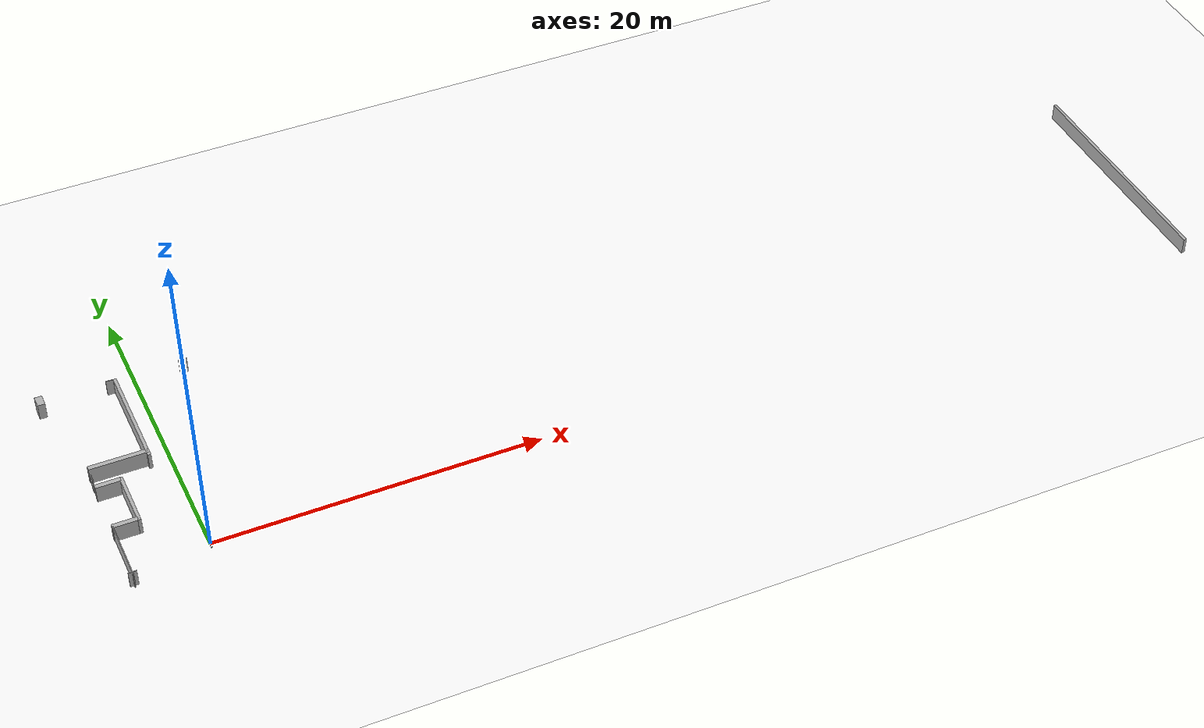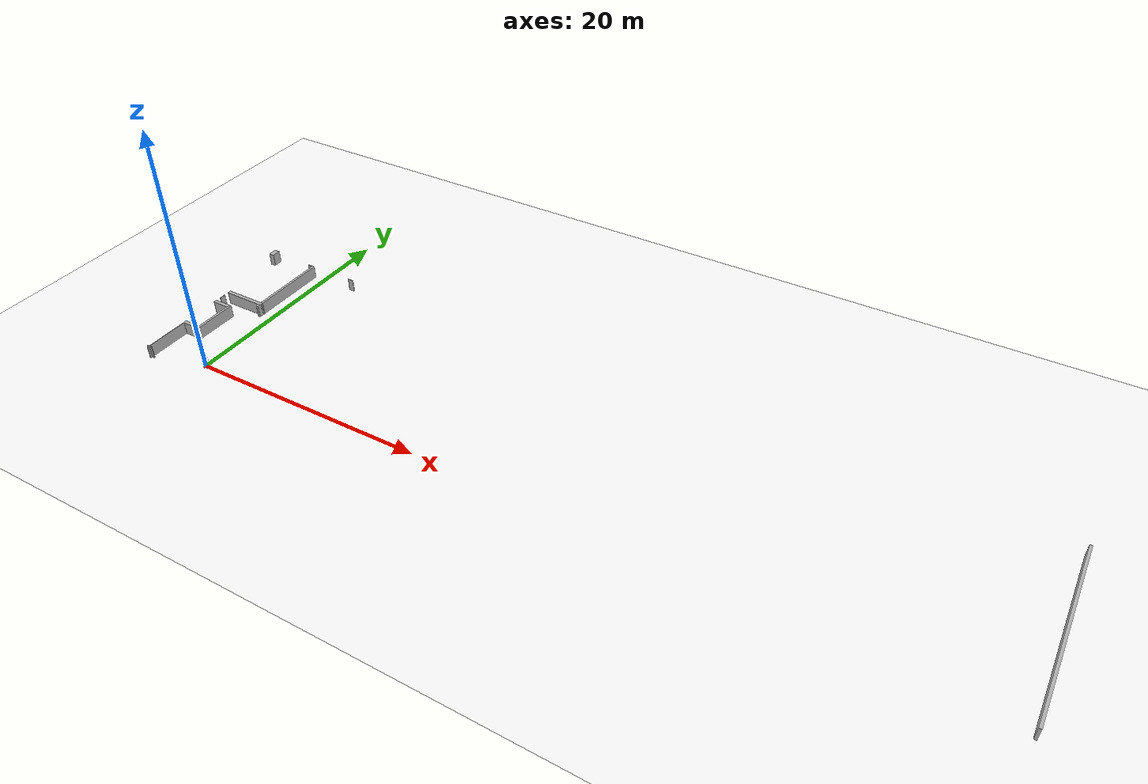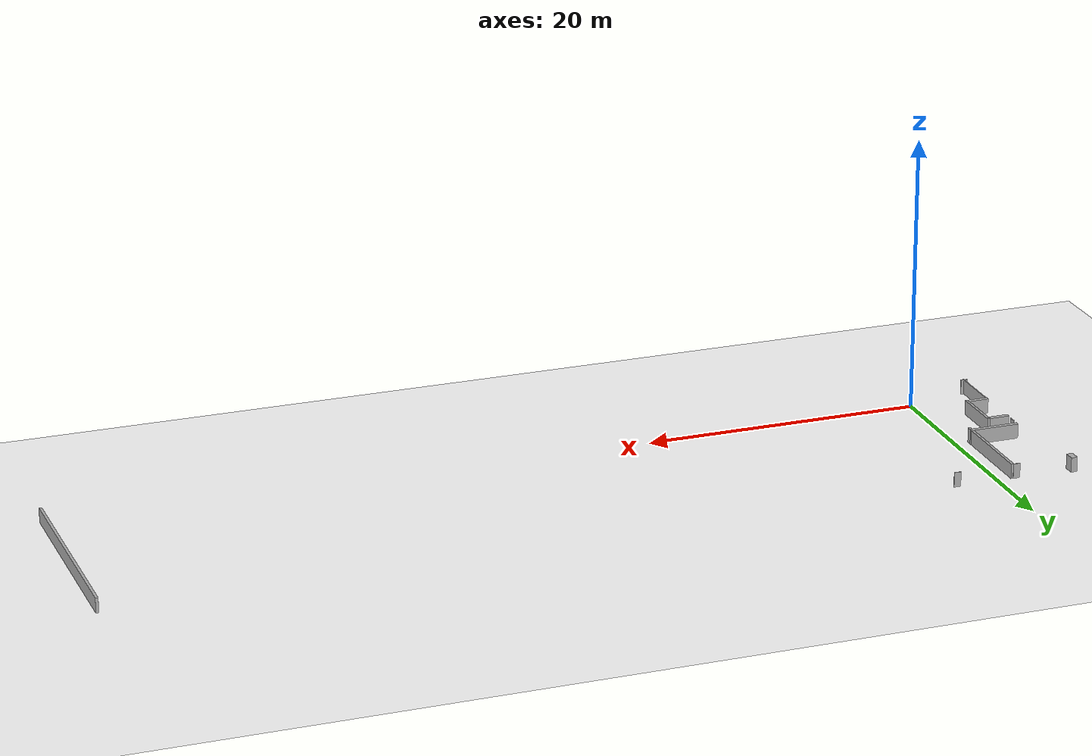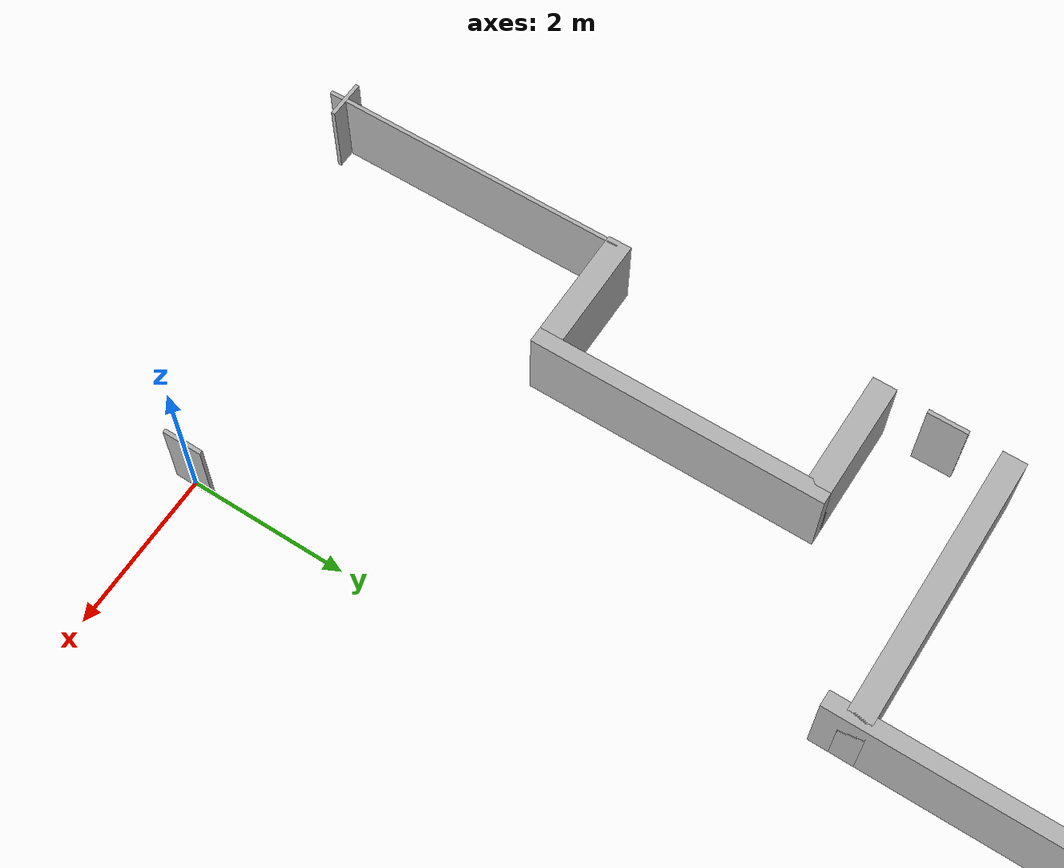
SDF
<?xml version="1.0" ?>
<sdf version="1.7">
  <world name="simple">

    <!-- Ánh sáng mặt trời -->
    <light name='sun' type='directional'>
      <cast_shadows>false</cast_shadows>
      <pose>0 0 10 0 -0 0</pose>
      <diffuse>0.8 0.8 0.8 1</diffuse>
      <specular>0.2 0.2 0.2 1</specular>
      <attenuation>
        <range>1000</range>
        <constant>0.9</constant>
        <linear>0.01</linear>
        <quadratic>0.001</quadratic>
      </attenuation>
      <direction>-0.5 0.1 -0.9</direction>
    </light>

    <!-- Giao diện người dùng -->
    <gui fullscreen='0'>
      <camera name='user_camera'>
        <pose>-17.1235 6.23259 18.6029 -1e-06 0.831642 -0.454982</pose>
        <view_controller>orbit</view_controller>
        <projection_type>perspective</projection_type>
      </camera>
    </gui>

    <!-- Mặt đất -->
    <model name='ground_plane'>
      <static>true</static>
      <link name='link'>
        <collision name='collision'>
          <geometry>
            <plane>
              <normal>0 0 1</normal>
              <size>500 500</size>
            </plane>
          </geometry>
        </collision>
        <visual name='visual'>
          <geometry>
            <plane>
              <normal>0 0 1</normal>
              <size>500 500</size>
            </plane>
          </geometry>
          <material>
            <ambient>1 1 1 1</ambient>
            <diffuse>1 1 1 1</diffuse>
          </material>
        </visual>
      </link>
    </model>

    <!-- Vật lý -->
    <gravity>0 0 -9.8</gravity>
    <physics type='ode'>
      <max_step_size>0.001</max_step_size>
      <real_time_factor>1</real_time_factor>
      <real_time_update_rate>1000</real_time_update_rate>
    </physics>

    <!-- Cảnh -->
    <scene>
      <ambient>1 1 1 1</ambient>
      <background>1 1 1 1</background>
      <shadows>false</shadows>
    </scene>

    <!-- Hai bức tường -->
    <model name="wall_start_under_opposite">
  <static>true</static>
  <pose>-1.2 10.7 0 0 0 0</pose>  <!-- Bức tường đầu bên phải tại X = 60.2m, Y = 5.5m, Z = 1m -->
  <link name="link">
    <collision name="collision">
      <geometry>
        <box>
          <size>0.2 7 2.0</size>  <!-- Kích thước bức tường: Dài 60m, Rộng 0.2m, Cao 2m -->
        </box>
      </geometry>
    </collision>
    <visual name="visual">
      <geometry>
        <box>
          <size>0.2 7 2.0</size>  <!-- Kích thước bức tường: Dài 60m, Rộng 0.2m, Cao 2m -->
        </box>
      </geometry>
      <material>
        <diffuse>0.7 0.7 0.7 1</diffuse>  <!-- Màu xám cho bức tường -->
      </material>
    </visual>
  </link>
</model>

<model name="wall_start_on_opposite">
  <static>true</static>
  <pose>63.2 6.5 0 0 0 0</pose>
  <link name="link">
    <collision name="collision">
      <geometry>
        <box>
          <size>0.2 15.4 2.0</size>
        </box>
      </geometry>
    </collision>
    <visual name="visual">
      <geometry>
        <box>
          <size>0.2 15.4 2.0</size>
        </box>
      </geometry>
      <material>
        <diffuse>0.7 0.7 0.7 1</diffuse>  <!-- Màu xám cho bức tường -->
      </material>
    </visual>
  </link>
</model>

<model name="wall_1">
  <static>true</static>
  <pose>-2.9 7.6 0 0 0 0</pose>
  <link name="link">
    <collision name="collision">
      <geometry>
        <box>
          <size>3.6 0.3 2.0</size>
        </box>
      </geometry>
    </collision>
    <visual name="visual">
      <geometry>
        <box>
          <size>3.6 0.3 2.0</size>
        </box>
      </geometry>
      <material>
        <diffuse>0.7 0.7 0.7 1</diffuse>  <!-- Màu xám cho bức tường -->
      </material>
    </visual>
  </link>
</model>

<model name="wall_2">
  <static>true</static>
  <pose>-4 6 0 0 0 0</pose>
  <link name="link">
    <collision name="collision">
      <geometry>
        <box>
          <size>1.5 0.3 2.0</size>
        </box>
      </geometry>
    </collision>
    <visual name="visual">
      <geometry>
        <box>
          <size>1.5 0.3 2.0</size>
        </box>
      </geometry>
      <material>
        <diffuse>0.7 0.7 0.7 1</diffuse>  <!-- Màu xám cho bức tường -->
      </material>
    </visual>
  </link>
</model>

<model name="wall_3"> <!-- cau thang -->
  <static>true</static>
  <pose>-3.2 4.3 0 0 0 0</pose>
  <link name="link">
    <collision name="collision">
      <geometry>
        <box>
          <size>0.2 3.7 2.0</size>
        </box>
      </geometry>
    </collision>
    <visual name="visual">
      <geometry>
        <box>
          <size>0.2 3.7 2.0</size>
        </box>
      </geometry>
      <material>
        <diffuse>0.7 0.7 0.7 1</diffuse>  <!-- Màu xám cho bức tường -->
      </material>
    </visual>
  </link>
</model>

<model name="wall_4">
  <static>true</static>
  <pose>-4 2.6 0 0 0 0</pose>
  <link name="link">
    <collision name="collision">
      <geometry>
        <box>
          <size>1.5 0.3 2.0</size>
        </box>
      </geometry>
    </collision>
    <visual name="visual">
      <geometry>
        <box>
          <size>1.5 0.3 2.0</size>
        </box>
      </geometry>
      <material>
        <diffuse>0.7 0.7 0.7 1</diffuse>  <!-- Màu xám cho bức tường -->
      </material>
    </visual>
  </link>
</model>

<model name="wall_left_1">
  <static>true</static>
  <pose>-4.7 6.8 0 0 0 0</pose>  <!-- Thanh nhỏ giữa cột 1 và cột 2 tại X = 2.1m, Y = 5.5m, Z = 1m -->
  <link name="link">
    <collision name="collision">
      <geometry>
        <box>
          <size>0.05 0.5 2.0</size>  <!-- Kích thước thanh nhỏ: Dài 1m, Rộng 0.05m, Cao 2m -->
        </box>
      </geometry>
    </collision>
    <visual name="visual">
      <geometry>
        <box>
          <size>0.05 0.5 2.0</size>  <!-- Kích thước thanh nhỏ: Dài 1m, Rộng 0.05m, Cao 2m -->
        </box>
      </geometry>
      <material>
        <diffuse>0.7 0.7 0.7 1</diffuse>  <!-- Màu xám cho thanh nhỏ -->
      </material>
    </visual>
  </link>
</model>

<model name="wall_left_2">
  <static>true</static>
  <pose>0 0 0 0 0 0</pose>  <!-- Thanh nhỏ giữa cột 1 và cột 2 tại X = 2.1m, Y = 5.5m, Z = 1m -->
  <link name="link">
    <collision name="collision">
      <geometry>
        <box>
          <size>0.05 0.5 2.0</size>  <!-- Kích thước thanh nhỏ: Dài 1m, Rộng 0.05m, Cao 2m -->
        </box>
      </geometry>
    </collision>
    <visual name="visual">
      <geometry>
        <box>
          <size>0.05 0.5 2.0</size>  <!-- Kích thước thanh nhỏ: Dài 1m, Rộng 0.05m, Cao 2m -->
        </box>
      </geometry>
      <material>
        <diffuse>0.7 0.7 0.7 1</diffuse>  <!-- Màu xám cho thanh nhỏ -->
      </material>
    </visual>
  </link>
</model>

<model name="wall_left_3">
  <static>true</static>
  <pose>-4.7 0.6 0 0 0 0</pose>  <!-- Thanh nhỏ giữa cột 1 và cột 2 tại X = 2.1m, Y = 5.5m, Z = 1m -->
  <link name="link">
    <collision name="collision">
      <geometry>
        <box>
          <size>0.05 4 2.0</size>  <!-- Kích thước thanh nhỏ: Dài 1m, Rộng 0.05m, Cao 2m -->
        </box>
      </geometry>
    </collision>
    <visual name="visual">
      <geometry>
        <box>
          <size>0.05 4 2.0</size>  <!-- Kích thước thanh nhỏ: Dài 1m, Rộng 0.05m, Cao 2m -->
        </box>
      </geometry>
      <material>
        <diffuse>0.7 0.7 0.7 1</diffuse>  <!-- Màu xám cho thanh nhỏ -->
      </material>
    </visual>
  </link>
</model>

<model name="wall_left_4">
  <static>true</static>
  <pose>-4.7 -1.2 0 0 0 0</pose>  <!-- Thanh nhỏ giữa cột 1 và cột 2 tại X = 2.1m, Y = 5.5m, Z = 1m -->
  <link name="link">
    <collision name="collision">
      <geometry>
        <box>
          <size>0.5 0.05 2.0</size>  <!-- Kích thước thanh nhỏ: Dài 1m, Rộng 0.05m, Cao 2m -->
        </box>
      </geometry>
    </collision>
    <visual name="visual">
      <geometry>
        <box>
          <size>0.5 0.05 2.0</size>  <!-- Kích thước thanh nhỏ: Dài 1m, Rộng 0.05m, Cao 2m -->
        </box>
      </geometry>
      <material>
        <diffuse>0.7 0.7 0.7 1</diffuse>  <!-- Màu xám cho thanh nhỏ -->
      </material>
    </visual>
  </link>
</model>

<model name="wall_left_5">
  <static>true</static>
  <pose>-5.7 14.2 0 0 0 0</pose>  <!-- Thanh nhỏ giữa cột 1 và cột 2 tại X = 2.1m, Y = 5.5m, Z = 1m -->
  <link name="link">
    <collision name="collision">
      <geometry>
        <box>
          <size>0.45 0.75 2.0</size>  <!-- Kích thước thanh nhỏ: Dài 1m, Rộng 0.05m, Cao 2m -->
        </box>
      </geometry>
    </collision>
    <visual name="visual">
      <geometry>
        <box>
          <size>0.45 0.75 2.0</size>  <!-- Kích thước thanh nhỏ: Dài 1m, Rộng 0.05m, Cao 2m -->
        </box>
      </geometry>
      <material>
        <diffuse>0.7 0.7 0.7 1</diffuse>  <!-- Màu xám cho thanh nhỏ -->
      </material>
    </visual>
  </link>
</model>

<model name="bar_left_39">
  <static>true</static>
  <pose>-1.5 14.2 0 0 0 0</pose>  <!-- Thanh nhỏ giữa cột 1 và cột 2 tại X = 2.1m, Y = 5.5m, Z = 1m -->
  <link name="link">
    <collision name="collision">
      <geometry>
        <box>
          <size>0.5 0.05 2.0</size>  <!-- Kích thước thanh nhỏ: Dài 1m, Rộng 0.05m, Cao 2m -->
        </box>
      </geometry>
    </collision>
    <visual name="visual">
      <geometry>
        <box>
          <size>0.5 0.05 2.0</size>  <!-- Kích thước thanh nhỏ: Dài 1m, Rộng 0.05m, Cao 2m -->
        </box>
      </geometry>
      <material>
        <diffuse>0.7 0.7 0.7 1</diffuse>  <!-- Màu xám cho thanh nhỏ -->
      </material>
    </visual>
  </link>
</model>

<model name="bar_left_40">
  <static>true</static>
  <pose>2.95 14.2 0 0 0 0</pose>  <!-- Thanh nhỏ giữa cột 1 và cột 2 tại X = 2.1m, Y = 5.5m, Z = 1m -->
  <link name="link">
    <collision name="collision">
      <geometry>
        <box>
          <size>0.5 0.05 2.0</size>  <!-- Kích thước thanh nhỏ: Dài 1m, Rộng 0.05m, Cao 2m -->
        </box>
      </geometry>
    </collision>
    <visual name="visual">
      <geometry>
        <box>
          <size>0.5 0.05 2.0</size>  <!-- Kích thước thanh nhỏ: Dài 1m, Rộng 0.05m, Cao 2m -->
        </box>
      </geometry>
      <material>
        <diffuse>0.7 0.7 0.7 1</diffuse>  <!-- Màu xám cho thanh nhỏ -->
      </material>
    </visual>
  </link>
</model>

    </world>
</sdf>
